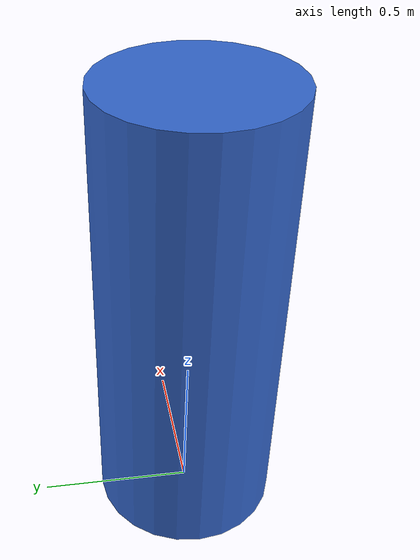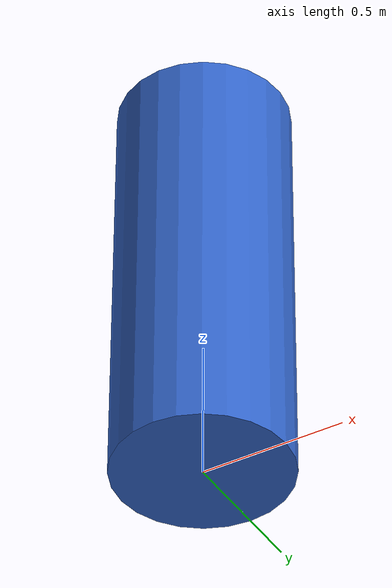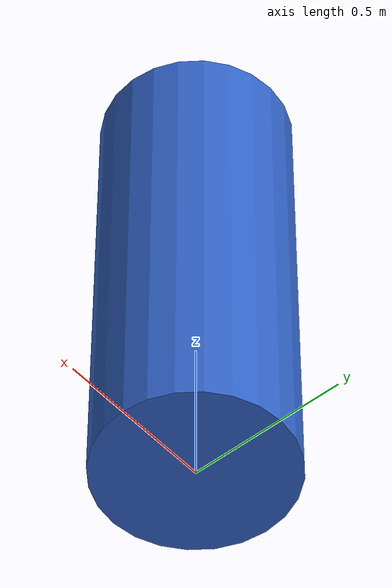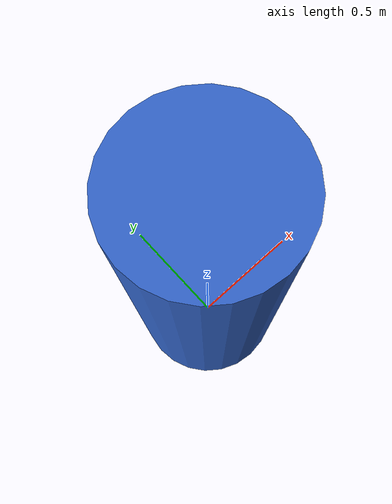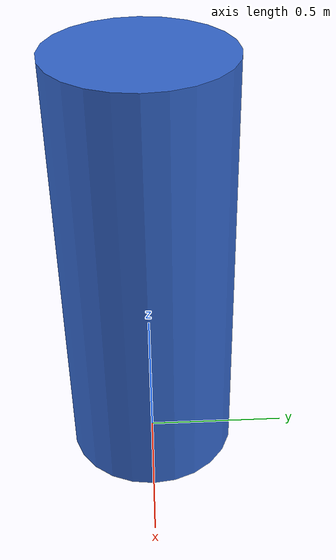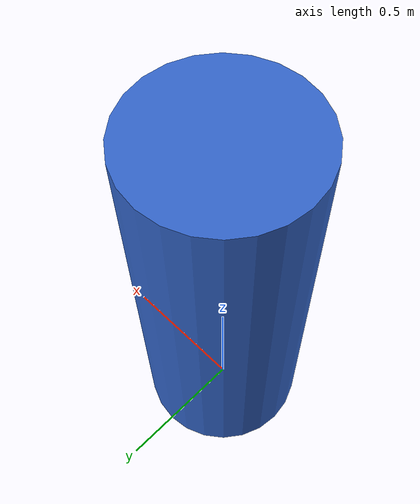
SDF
<?xml version="1.0" ?>
<sdf version="1.7">
  <model name="pillar_model">
    <static>true</static>
    <link name="link">
      <pose>0 0 0.75 0 0 0</pose>
      <collision name="collision">
        <geometry>
          <cylinder><radius>0.3</radius><length>1.5</length></cylinder>
        </geometry>
      </collision>
      <visual name="visual">
        <geometry>
          <cylinder><radius>0.3</radius><length>1.5</length></cylinder>
        </geometry>
        <material>
          <diffuse>0.2 0.4 0.8 1</diffuse>
        </material>
      </visual>
    </link>
  </model>
</sdf>
